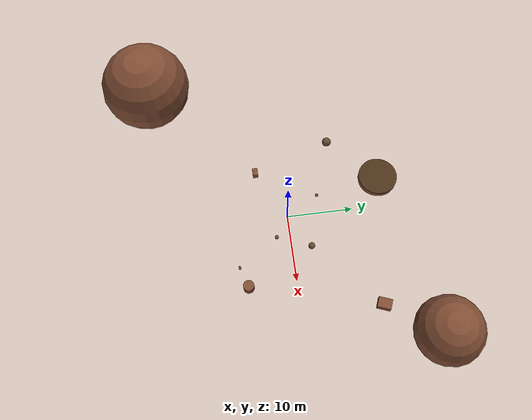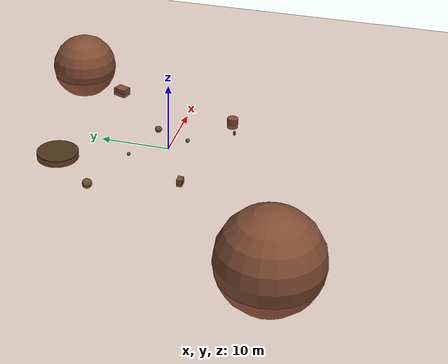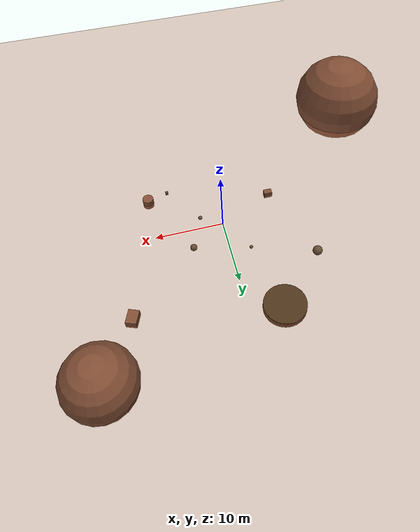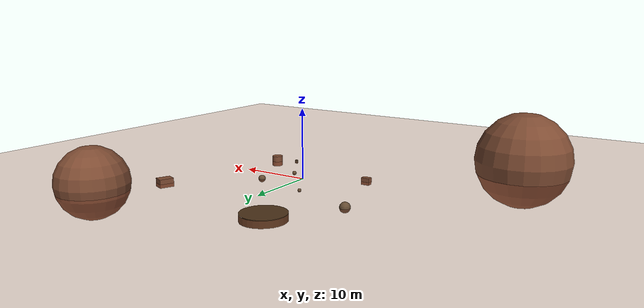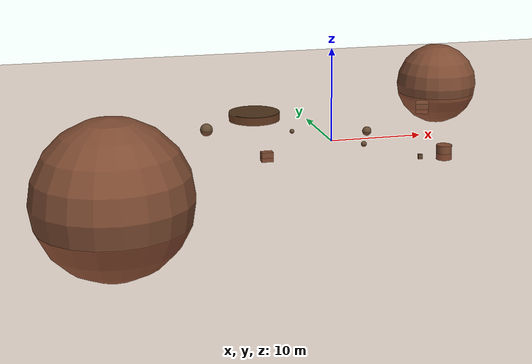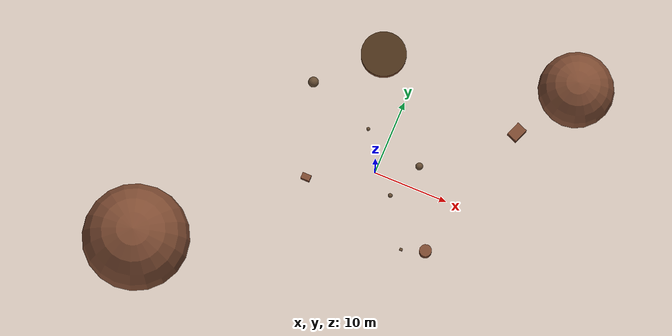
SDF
<?xml version="1.0" ?>
<sdf version="1.6">
  <world name="mars_terrain">

    <!-- Global light source -->
    <include>
      <uri>model://sun</uri>
    </include>

    <!-- Mars sky -->
    <scene>
      <sky>
        <clouds>
          <speed>12</speed>
        </clouds>
        <ambient>0.4 0.4 0.4 1</ambient>
        <background>0.7 0.5 0.3 1</background>
      </sky>
      <shadows>true</shadows>
    </scene>

    <!-- Mars atmosphere lighting -->
    <light name='mars_light' type='directional'>
      <cast_shadows>1</cast_shadows>
      <pose>0 0 10 0 -0 0</pose>
      <diffuse>0.8 0.6 0.4 1</diffuse>
      <specular>0.2 0.2 0.2 1</specular>
      <attenuation>
        <range>1000</range>
        <constant>0.9</constant>
        <linear>0.01</linear>
        <quadratic>0.001</quadratic>
      </attenuation>
      <direction>-0.5 0.1 -0.9</direction>
    </light>

    <!-- Mars ground plane -->
    <model name="mars_ground_plane">
      <static>true</static>
      <link name="link">
        <collision name="collision">
          <geometry>
            <plane>
              <normal>0 0 1</normal>
              <size>100 100</size>
            </plane>
          </geometry>
          <surface>
            <contact>
              <collide_bitmask>65535</collide_bitmask>
              <ode>
                <cfm>0</cfm>
                <erp>0.2</erp>
                <max_vel>100</max_vel>
                <min_depth>0.0001</min_depth>
              </ode>
            </contact>
            <friction>
              <torsional>
                <ode/>
              </torsional>
              <ode>
                <mu>0.6</mu>
                <mu2>0.6</mu2>
              </ode>
            </friction>
            <bounce>
              <restitution_coefficient>0</restitution_coefficient>
              <threshold>1e+06</threshold>
            </bounce>
          </surface>
          <max_contacts>20</max_contacts>
        </collision>
        <visual name="visual">
          <cast_shadows>false</cast_shadows>
          <geometry>
            <plane>
              <normal>0 0 1</normal>
              <size>100 100</size>
            </plane>
          </geometry>
          <material>
            <script>
              <uri>file://media/materials/scripts/gazebo.material</uri>
              <name>Gazebo/Dirt</name>
            </script>
            <ambient>0.6 0.3 0.2 1</ambient>
            <diffuse>0.6 0.3 0.2 1</diffuse>
            <specular>0.1 0.1 0.1 1</specular>
          </material>
        </visual>
      </link>
    </model>

    <!-- Mars rocks scattered around -->
    <model name="rock_1">
      <pose>5 3 0 0 0 0</pose>
      <static>true</static>
      <link name="link">
        <collision name="collision">
          <geometry>
            <sphere>
              <radius>0.5</radius>
            </sphere>
          </geometry>
        </collision>
        <visual name="visual">
          <geometry>
            <sphere>
              <radius>0.5</radius>
            </sphere>
          </geometry>
          <material>
            <ambient>0.3 0.2 0.1 1</ambient>
            <diffuse>0.4 0.3 0.2 1</diffuse>
            <specular>0.1 0.1 0.1 1</specular>
          </material>
        </visual>
      </link>
    </model>

    <model name="rock_2">
      <pose>-8 -4 0 0 0 0</pose>
      <static>true</static>
      <link name="link">
        <collision name="collision">
          <geometry>
            <box>
              <size>1.2 0.8 1.0</size>
            </box>
          </geometry>
        </collision>
        <visual name="visual">
          <geometry>
            <box>
              <size>1.2 0.8 1.0</size>
            </box>
          </geometry>
          <material>
            <ambient>0.3 0.2 0.1 1</ambient>
            <diffuse>0.5 0.3 0.2 1</diffuse>
            <specular>0.1 0.1 0.1 1</specular>
          </material>
        </visual>
      </link>
    </model>

    <model name="rock_3">
      <pose>10 -7 0 0 0 0.5</pose>
      <static>true</static>
      <link name="link">
        <collision name="collision">
          <geometry>
            <cylinder>
              <radius>0.8</radius>
              <length>1.5</length>
            </cylinder>
          </geometry>
        </collision>
        <visual name="visual">
          <geometry>
            <cylinder>
              <radius>0.8</radius>
              <length>1.5</length>
            </cylinder>
          </geometry>
          <material>
            <ambient>0.4 0.2 0.1 1</ambient>
            <diffuse>0.5 0.3 0.2 1</diffuse>
            <specular>0.1 0.1 0.1 1</specular>
          </material>
        </visual>
      </link>
    </model>

    <model name="rock_4">
      <pose>-12 8 0 0 0 0</pose>
      <static>true</static>
      <link name="link">
        <collision name="collision">
          <geometry>
            <sphere>
              <radius>0.7</radius>
            </sphere>
          </geometry>
        </collision>
        <visual name="visual">
          <geometry>
            <sphere>
              <radius>0.7</radius>
            </sphere>
          </geometry>
          <material>
            <ambient>0.3 0.2 0.1 1</ambient>
            <diffuse>0.4 0.3 0.2 1</diffuse>
            <specular>0.1 0.1 0.1 1</specular>
          </material>
        </visual>
      </link>
    </model>

    <model name="rock_5">
      <pose>15 12 0 0 0 1.2</pose>
      <static>true</static>
      <link name="link">
        <collision name="collision">
          <geometry>
            <box>
              <size>2.0 1.5 1.2</size>
            </box>
          </geometry>
        </collision>
        <visual name="visual">
          <geometry>
            <box>
              <size>2.0 1.5 1.2</size>
            </box>
          </geometry>
          <material>
            <ambient>0.4 0.25 0.15 1</ambient>
            <diffuse>0.5 0.3 0.2 1</diffuse>
            <specular>0.1 0.1 0.1 1</specular>
          </material>
        </visual>
      </link>
    </model>

    <!-- Small crater -->
    <model name="crater_1">
      <pose>-5 15 -0.5 0 0 0</pose>
      <static>true</static>
      <link name="link">
        <collision name="collision">
          <geometry>
            <cylinder>
              <radius>3.0</radius>
              <length>1.0</length>
            </cylinder>
          </geometry>
        </collision>
        <visual name="visual">
          <geometry>
            <cylinder>
              <radius>3.0</radius>
              <length>1.0</length>
            </cylinder>
          </geometry>
          <material>
            <ambient>0.2 0.1 0.05 1</ambient>
            <diffuse>0.3 0.2 0.1 1</diffuse>
            <specular>0.05 0.05 0.05 1</specular>
          </material>
        </visual>
      </link>
    </model>

    <!-- Hills -->
    <model name="hill_1">
      <pose>20 20 1 0 0 0</pose>
      <static>true</static>
      <link name="link">
        <collision name="collision">
          <geometry>
            <sphere>
              <radius>5.0</radius>
            </sphere>
          </geometry>
        </collision>
        <visual name="visual">
          <geometry>
            <sphere>
              <radius>5.0</radius>
            </sphere>
          </geometry>
          <material>
            <ambient>0.4 0.2 0.1 1</ambient>
            <diffuse>0.5 0.3 0.2 1</diffuse>
            <specular>0.1 0.1 0.1 1</specular>
          </material>
        </visual>
      </link>
    </model>

    <model name="hill_2">
      <pose>-25 -20 2 0 0 0</pose>
      <static>true</static>
      <link name="link">
        <collision name="collision">
          <geometry>
            <sphere>
              <radius>7.0</radius>
            </sphere>
          </geometry>
        </collision>
        <visual name="visual">
          <geometry>
            <sphere>
              <radius>7.0</radius>
            </sphere>
          </geometry>
          <material>
            <ambient>0.4 0.2 0.1 1</ambient>
            <diffuse>0.5 0.3 0.2 1</diffuse>
            <specular>0.1 0.1 0.1 1</specular>
          </material>
        </visual>
      </link>
    </model>

    <!-- More scattered rocks for obstacles -->
    <model name="small_rock_1">
      <pose>3 -2 0 0 0 0</pose>
      <static>true</static>
      <link name="link">
        <collision name="collision">
          <geometry>
            <sphere>
              <radius>0.3</radius>
            </sphere>
          </geometry>
        </collision>
        <visual name="visual">
          <geometry>
            <sphere>
              <radius>0.3</radius>
            </sphere>
          </geometry>
          <material>
            <ambient>0.3 0.2 0.1 1</ambient>
            <diffuse>0.4 0.3 0.2 1</diffuse>
          </material>
        </visual>
      </link>
    </model>

    <model name="small_rock_2">
      <pose>-3 5 0 0 0 0</pose>
      <static>true</static>
      <link name="link">
        <collision name="collision">
          <geometry>
            <sphere>
              <radius>0.25</radius>
            </sphere>
          </geometry>
        </collision>
        <visual name="visual">
          <geometry>
            <sphere>
              <radius>0.25</radius>
            </sphere>
          </geometry>
          <material>
            <ambient>0.3 0.2 0.1 1</ambient>
            <diffuse>0.4 0.3 0.2 1</diffuse>
          </material>
        </visual>
      </link>
    </model>

    <model name="small_rock_3">
      <pose>7 -8 0 0 0 0</pose>
      <static>true</static>
      <link name="link">
        <collision name="collision">
          <geometry>
            <box>
              <size>0.4 0.3 0.5</size>
            </box>
          </geometry>
        </collision>
        <visual name="visual">
          <geometry>
            <box>
              <size>0.4 0.3 0.5</size>
            </box>
          </geometry>
          <material>
            <ambient>0.3 0.2 0.1 1</ambient>
            <diffuse>0.4 0.3 0.2 1</diffuse>
          </material>
        </visual>
      </link>
    </model>

    <!-- Physics settings -->
    <physics name='default_physics' default='0' type='ode'>
      <gravity>0 0 -3.71</gravity> <!-- Mars gravity -->
      <magnetic_field>6e-06 2.3e-05 -4.2e-05</magnetic_field>
      <atmosphere type='adiabatic'/>
      <ode>
        <solver>
          <type>quick</type>
          <iters>150</iters>
          <precon_iters>0</precon_iters>
          <sor>1.400000</sor>
          <use_dynamic_moi_rescaling>1</use_dynamic_moi_rescaling>
        </solver>
        <constraints>
          <cfm>0.00001</cfm>
          <erp>0.2</erp>
          <contact_max_correcting_vel>2000.000000</contact_max_correcting_vel>
          <contact_surface_layer>0.01000</contact_surface_layer>
        </constraints>
      </ode>
      <max_step_size>0.004</max_step_size>
      <real_time_factor>1.000000</real_time_factor>
      <real_time_update_rate>250.000000</real_time_update_rate>
    </physics>

    <!-- GUI settings -->
    <gui fullscreen='0'>
      <camera name='user_camera'>
        <pose>10.0 -10.0 5.0 0 0.3 2.35</pose>
        <view_controller>orbit</view_controller>
        <projection_type>perspective</projection_type>
      </camera>
    </gui>

  </world>
</sdf>
